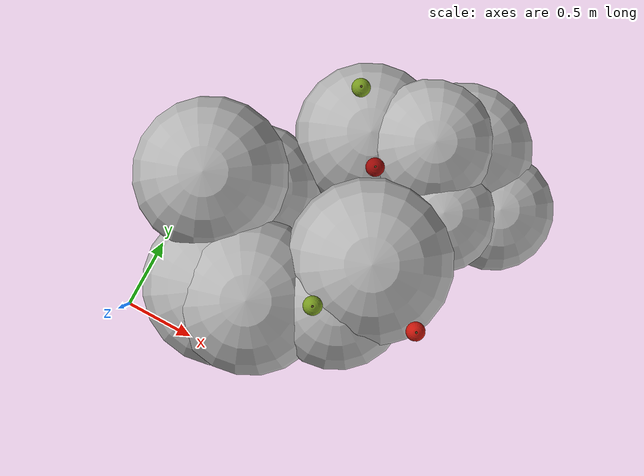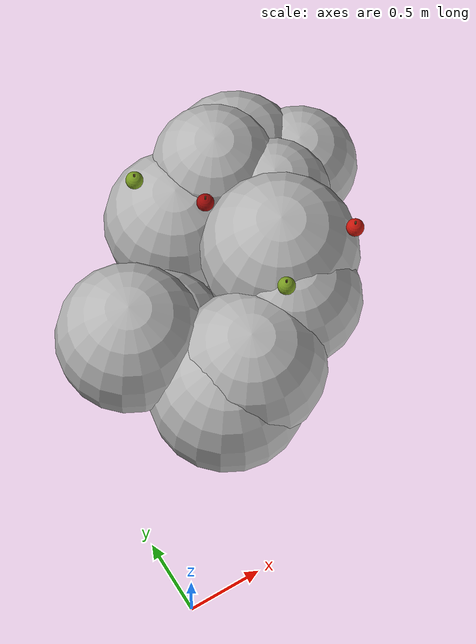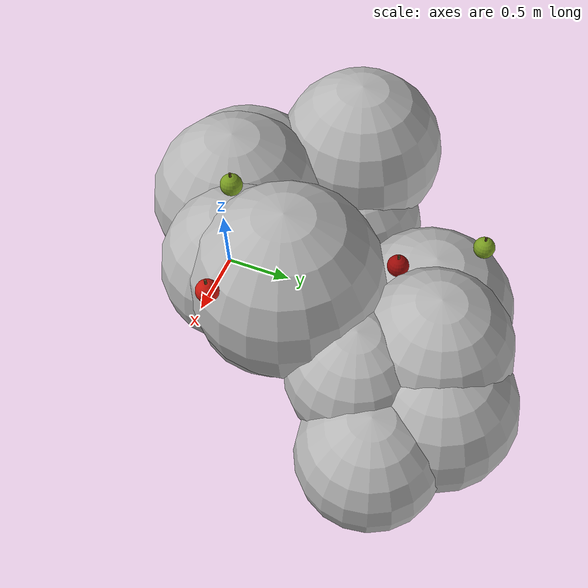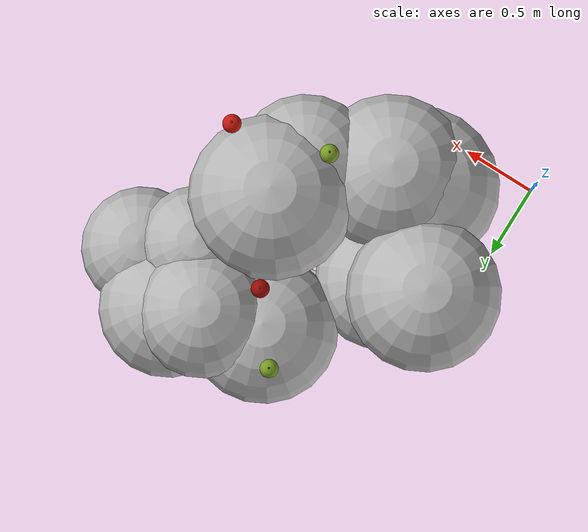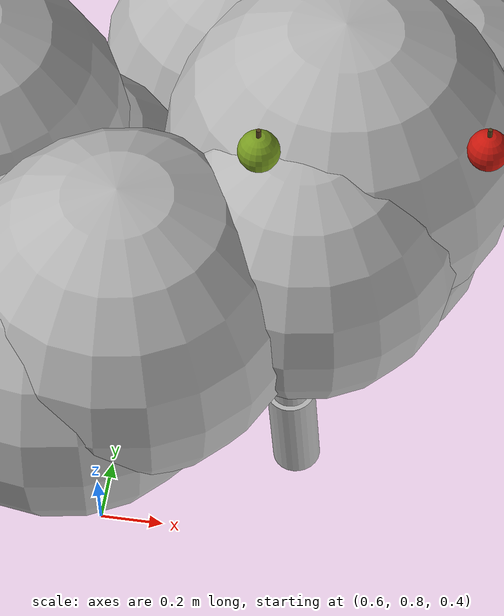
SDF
<sdf version="1.6">
 <world name="default">
  <model name="tree_r3_t8">
   <static>true</static>
   <link name="tree_r3_t8_trunk0">
    <pose>1.1398 1.3966 0.1796 0.0285 -0.0500 0</pose>
    <collision name="tree_r3_t8_trunk0_c">
     <geometry><cylinder><radius>0.0806</radius><length>0.3807</length></cylinder></geometry>
    </collision>
    <visual name="tree_r3_t8_trunk0_v">
     <geometry><cylinder><radius>0.0806</radius><length>0.3807</length></cylinder></geometry>
     <material>
      <script>
       <uri>model://orchard/materials/scripts</uri>
       <uri>model://orchard/materials/textures</uri>
       <name>Orchard/Bark</name>
      </script>
     </material>
    </visual>
   </link>
   <link name="tree_r3_t8_trunk1">
    <pose>1.1218 1.3864 0.5387 0.0285 -0.0500 0</pose>
    <visual name="tree_r3_t8_trunk1_v">
     <geometry><cylinder><radius>0.0629</radius><length>0.3807</length></cylinder></geometry>
     <material>
      <script>
       <uri>model://orchard/materials/scripts</uri>
       <uri>model://orchard/materials/textures</uri>
       <name>Orchard/Bark</name>
      </script>
     </material>
    </visual>
   </link>
   <link name="tree_r3_t8_trunk2">
    <pose>1.1038 1.3762 0.8978 0.0285 -0.0500 0</pose>
    <visual name="tree_r3_t8_trunk2_v">
     <geometry><cylinder><radius>0.0451</radius><length>0.3807</length></cylinder></geometry>
     <material>
      <script>
       <uri>model://orchard/materials/scripts</uri>
       <uri>model://orchard/materials/textures</uri>
       <name>Orchard/Bark</name>
      </script>
     </material>
    </visual>
   </link>
   <link name="tree_r3_t8_br0">
    <pose>1.4630 1.4340 1.2756 0.0000 1.0827 0.1692</pose>
    <visual name="tree_r3_t8_br0_v">
     <geometry><cylinder><radius>0.0288</radius><length>0.8456</length></cylinder></geometry>
     <material>
      <script>
       <uri>model://orchard/materials/scripts</uri>
       <uri>model://orchard/materials/textures</uri>
       <name>Orchard/Bark</name>
      </script>
     </material>
    </visual>
   </link>
   <link name="tree_r3_t8_br1">
    <pose>1.2219 1.5576 1.3206 0.0000 0.7480 0.9727</pose>
    <visual name="tree_r3_t8_br1_v">
     <geometry><cylinder><radius>0.0264</radius><length>0.6636</length></cylinder></geometry>
     <material>
      <script>
       <uri>model://orchard/materials/scripts</uri>
       <uri>model://orchard/materials/textures</uri>
       <name>Orchard/Bark</name>
      </script>
     </material>
    </visual>
   </link>
   <link name="tree_r3_t8_br2">
    <pose>0.9088 1.5371 1.2170 0.0000 1.0603 2.4133</pose>
    <visual name="tree_r3_t8_br2_v">
     <geometry><cylinder><radius>0.0338</radius><length>0.5716</length></cylinder></geometry>
     <material>
      <script>
       <uri>model://orchard/materials/scripts</uri>
       <uri>model://orchard/materials/textures</uri>
       <name>Orchard/Bark</name>
      </script>
     </material>
    </visual>
   </link>
   <link name="tree_r3_t8_br3">
    <pose>0.7841 1.3225 1.2996 0.0000 0.9556 3.2967</pose>
    <visual name="tree_r3_t8_br3_v">
     <geometry><cylinder><radius>0.0268</radius><length>0.7704</length></cylinder></geometry>
     <material>
      <script>
       <uri>model://orchard/materials/scripts</uri>
       <uri>model://orchard/materials/textures</uri>
       <name>Orchard/Bark</name>
      </script>
     </material>
    </visual>
   </link>
   <link name="tree_r3_t8_br4">
    <pose>0.9688 1.1022 1.3791 0.0000 0.7773 4.2741</pose>
    <visual name="tree_r3_t8_br4_v">
     <geometry><cylinder><radius>0.0340</radius><length>0.8468</length></cylinder></geometry>
     <material>
      <script>
       <uri>model://orchard/materials/scripts</uri>
       <uri>model://orchard/materials/textures</uri>
       <name>Orchard/Bark</name>
      </script>
     </material>
    </visual>
   </link>
   <link name="tree_r3_t8_br5">
    <pose>1.2572 1.1031 1.2381 0.0000 1.0968 5.2571</pose>
    <visual name="tree_r3_t8_br5_v">
     <geometry><cylinder><radius>0.0232</radius><length>0.7043</length></cylinder></geometry>
     <material>
      <script>
       <uri>model://orchard/materials/scripts</uri>
       <uri>model://orchard/materials/textures</uri>
       <name>Orchard/Bark</name>
      </script>
     </material>
    </visual>
   </link>
   <link name="tree_r3_t8_fol0">
    <pose>0.4997 1.1860 1.5051 0 0 0</pose>
    <visual name="tree_r3_t8_fol0_v">
     <geometry><sphere><radius>0.3989</radius></sphere></geometry>
     <material>
      <script>
       <uri>model://orchard/materials/scripts</uri>
       <uri>model://orchard/materials/textures</uri>
       <name>Orchard/Foliage1</name>
      </script>
     </material>
    </visual>
   </link>
   <link name="tree_r3_t8_fol1">
    <pose>0.7934 0.6214 1.8022 0 0 0</pose>
    <visual name="tree_r3_t8_fol1_v">
     <geometry><sphere><radius>0.4688</radius></sphere></geometry>
     <material>
      <script>
       <uri>model://orchard/materials/scripts</uri>
       <uri>model://orchard/materials/textures</uri>
       <name>Orchard/Foliage3</name>
      </script>
     </material>
    </visual>
   </link>
   <link name="tree_r3_t8_fol2">
    <pose>1.3041 1.1320 1.9193 0 0 0</pose>
    <visual name="tree_r3_t8_fol2_v">
     <geometry><sphere><radius>0.4926</radius></sphere></geometry>
     <material>
      <script>
       <uri>model://orchard/materials/scripts</uri>
       <uri>model://orchard/materials/textures</uri>
       <name>Orchard/Foliage0</name>
      </script>
     </material>
    </visual>
   </link>
   <link name="tree_r3_t8_fol3">
    <pose>1.8337 1.7662 1.4677 0 0 0</pose>
    <visual name="tree_r3_t8_fol3_v">
     <geometry><sphere><radius>0.3710</radius></sphere></geometry>
     <material>
      <script>
       <uri>model://orchard/materials/scripts</uri>
       <uri>model://orchard/materials/textures</uri>
       <name>Orchard/Foliage3</name>
      </script>
     </material>
    </visual>
   </link>
   <link name="tree_r3_t8_fol4">
    <pose>0.2466 1.1349 1.8440 0 0 0</pose>
    <visual name="tree_r3_t8_fol4_v">
     <geometry><sphere><radius>0.4598</radius></sphere></geometry>
     <material>
      <script>
       <uri>model://orchard/materials/scripts</uri>
       <uri>model://orchard/materials/textures</uri>
       <name>Orchard/Foliage0</name>
      </script>
     </material>
    </visual>
   </link>
   <link name="tree_r3_t8_fol5">
    <pose>0.9515 1.7930 1.5173 0 0 0</pose>
    <visual name="tree_r3_t8_fol5_v">
     <geometry><sphere><radius>0.4528</radius></sphere></geometry>
     <material>
      <script>
       <uri>model://orchard/materials/scripts</uri>
       <uri>model://orchard/materials/textures</uri>
       <name>Orchard/Foliage3</name>
      </script>
     </material>
    </visual>
   </link>
   <link name="tree_r3_t8_fol6">
    <pose>0.6133 0.5914 1.6576 0 0 0</pose>
    <visual name="tree_r3_t8_fol6_v">
     <geometry><sphere><radius>0.4895</radius></sphere></geometry>
     <material>
      <script>
       <uri>model://orchard/materials/scripts</uri>
       <uri>model://orchard/materials/textures</uri>
       <name>Orchard/Foliage1</name>
      </script>
     </material>
    </visual>
   </link>
   <link name="tree_r3_t8_fol7">
    <pose>1.2998 1.9074 1.7316 0 0 0</pose>
    <visual name="tree_r3_t8_fol7_v">
     <geometry><sphere><radius>0.3973</radius></sphere></geometry>
     <material>
      <script>
       <uri>model://orchard/materials/scripts</uri>
       <uri>model://orchard/materials/textures</uri>
       <name>Orchard/Foliage0</name>
      </script>
     </material>
    </visual>
   </link>
   <link name="tree_r3_t8_fol8">
    <pose>1.2413 0.8512 1.8445 0 0 0</pose>
    <visual name="tree_r3_t8_fol8_v">
     <geometry><sphere><radius>0.4173</radius></sphere></geometry>
     <material>
      <script>
       <uri>model://orchard/materials/scripts</uri>
       <uri>model://orchard/materials/textures</uri>
       <name>Orchard/Foliage0</name>
      </script>
     </material>
    </visual>
   </link>
   <link name="tree_r3_t8_fol9">
    <pose>1.4999 1.9905 1.5208 0 0 0</pose>
    <visual name="tree_r3_t8_fol9_v">
     <geometry><sphere><radius>0.4214</radius></sphere></geometry>
     <material>
      <script>
       <uri>model://orchard/materials/scripts</uri>
       <uri>model://orchard/materials/textures</uri>
       <name>Orchard/Foliage0</name>
      </script>
     </material>
    </visual>
   </link>
   <link name="tree_r3_t8_fol10">
    <pose>1.3188 1.0577 1.7377 0 0 0</pose>
    <visual name="tree_r3_t8_fol10_v">
     <geometry><sphere><radius>0.4046</radius></sphere></geometry>
     <material>
      <script>
       <uri>model://orchard/materials/scripts</uri>
       <uri>model://orchard/materials/textures</uri>
       <name>Orchard/Foliage1</name>
      </script>
     </material>
    </visual>
   </link>
   <link name="tree_r3_t8_fol11">
    <pose>1.5371 1.5830 1.6631 0 0 0</pose>
    <visual name="tree_r3_t8_fol11_v">
     <geometry><sphere><radius>0.3588</radius></sphere></geometry>
     <material>
      <script>
       <uri>model://orchard/materials/scripts</uri>
       <uri>model://orchard/materials/textures</uri>
       <name>Orchard/Foliage3</name>
      </script>
     </material>
    </visual>
   </link>
   <link name="tree_r3_t8_ap0">
    <pose>1.6996 0.9218 2.2247 0 0 0</pose>
    <visual name="tree_r3_t8_ap0_v">
     <geometry><sphere><radius>0.0550</radius></sphere></geometry>
     <material>
      <ambient>0.320 0.036 0.020 1.00</ambient>
      <diffuse>0.800 0.090 0.050 1.00</diffuse>
      <specular>0.45 0.35 0.32 1</specular>
     </material>
    </visual>
   </link>
   <link name="tree_r3_t8_st0">
    <pose>1.6996 0.9218 2.2770 0 0 0</pose>
    <visual name="tree_r3_t8_st0_v">
     <geometry><cylinder><radius>0.0060</radius><length>0.0500</length></cylinder></geometry>
     <material><ambient>0.128 0.096 0.040 1.00</ambient><diffuse>0.320 0.240 0.100 1.00</diffuse></material>
    </visual>
   </link>
   <link name="tree_r3_t8_ap1">
    <pose>0.7781 1.9904 1.9454 0 0 0</pose>
    <visual name="tree_r3_t8_ap1_v">
     <geometry><sphere><radius>0.0550</radius></sphere></geometry>
     <material>
      <ambient>0.192 0.248 0.052 1.00</ambient>
      <diffuse>0.480 0.620 0.130 1.00</diffuse>
      <specular>0.45 0.35 0.32 1</specular>
     </material>
    </visual>
   </link>
   <link name="tree_r3_t8_st1">
    <pose>0.7781 1.9904 1.9976 0 0 0</pose>
    <visual name="tree_r3_t8_st1_v">
     <geometry><cylinder><radius>0.0060</radius><length>0.0500</length></cylinder></geometry>
     <material><ambient>0.128 0.096 0.040 1.00</ambient><diffuse>0.320 0.240 0.100 1.00</diffuse></material>
    </visual>
   </link>
   <link name="tree_r3_t8_ap2">
    <pose>1.0685 1.6258 1.9762 0 0 0</pose>
    <visual name="tree_r3_t8_ap2_v">
     <geometry><sphere><radius>0.0550</radius></sphere></geometry>
     <material>
      <ambient>0.248 0.016 0.012 1.00</ambient>
      <diffuse>0.620 0.040 0.030 1.00</diffuse>
      <specular>0.45 0.35 0.32 1</specular>
     </material>
    </visual>
   </link>
   <link name="tree_r3_t8_st2">
    <pose>1.0685 1.6258 2.0285 0 0 0</pose>
    <visual name="tree_r3_t8_st2_v">
     <geometry><cylinder><radius>0.0060</radius><length>0.0500</length></cylinder></geometry>
     <material><ambient>0.128 0.096 0.040 1.00</ambient><diffuse>0.320 0.240 0.100 1.00</diffuse></material>
    </visual>
   </link>
   <link name="tree_r3_t8_ap3">
    <pose>1.1289 0.7788 2.2917 0 0 0</pose>
    <visual name="tree_r3_t8_ap3_v">
     <geometry><sphere><radius>0.0550</radius></sphere></geometry>
     <material>
      <ambient>0.192 0.248 0.052 1.00</ambient>
      <diffuse>0.480 0.620 0.130 1.00</diffuse>
      <specular>0.45 0.35 0.32 1</specular>
     </material>
    </visual>
   </link>
   <link name="tree_r3_t8_st3">
    <pose>1.1289 0.7788 2.3439 0 0 0</pose>
    <visual name="tree_r3_t8_st3_v">
     <geometry><cylinder><radius>0.0060</radius><length>0.0500</length></cylinder></geometry>
     <material><ambient>0.128 0.096 0.040 1.00</ambient><diffuse>0.320 0.240 0.100 1.00</diffuse></material>
    </visual>
   </link>
  </model>
 </world>
</sdf>
